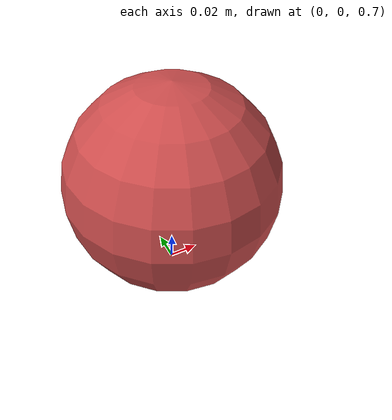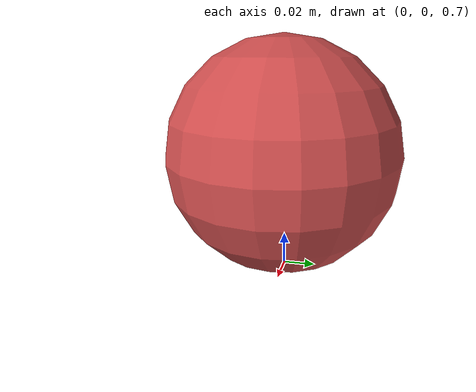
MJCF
<mujoco model="drop_001">
  <option timestep="0.001" gravity="0 0 -9.81"/>

  <visual>
    <headlight ambient="0.5 0.5 0.5"/>
  </visual>

  <asset>
    <texture name="grid" type="2d" builtin="checker" width="512" height="512" rgb1="0.2 0.3 0.4" rgb2="0.3 0.4 0.5"/>
    <material name="grid" texture="grid" texrepeat="1 1" reflectance="0.2"/>
    <material name="finger" rgba="0.8 0.3 0.3 1.0"/>
  </asset>

  <worldbody>
    <!-- Ground plane -->
    <geom name="floor" type="plane" size="2 2 0.1" material="grid"
          condim="6" friction="0.6251827095463638 0.005 0.0001" solref="0.02 0.6297465650974599"/>

    <!-- Sphere -->
    <body name="fingertip" pos="0 0 0.7746636695552455">
      <freejoint/>
      <geom name="finger" type="sphere" size="0.07235320428319378" mass="0.21939485460932773" material="finger"
            condim="6" friction="0.6251827095463638 0.005 0.0001" solref="0.02 0.6297465650974599"/>
      <site name="contact_site" pos="0 0 0" size="0.001"/>
    </body>
  </worldbody>

  <sensor>
    <touch name="finger_touch" site="contact_site"/>
    <framepos name="finger_pos" objtype="site" objname="contact_site"/>
    <framequat name="finger_quat" objtype="site" objname="contact_site"/>
    <framelinvel name="finger_vel" objtype="site" objname="contact_site"/>
  </sensor>
</mujoco>
